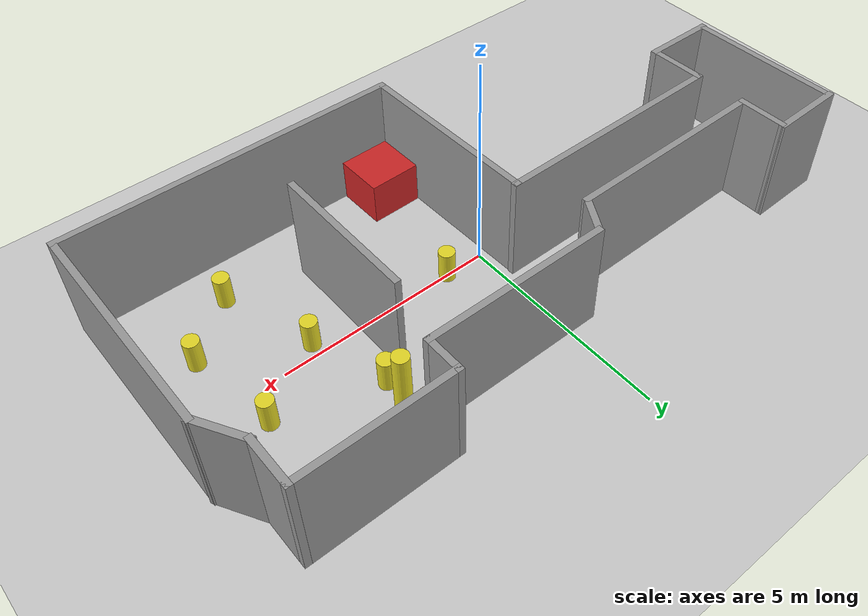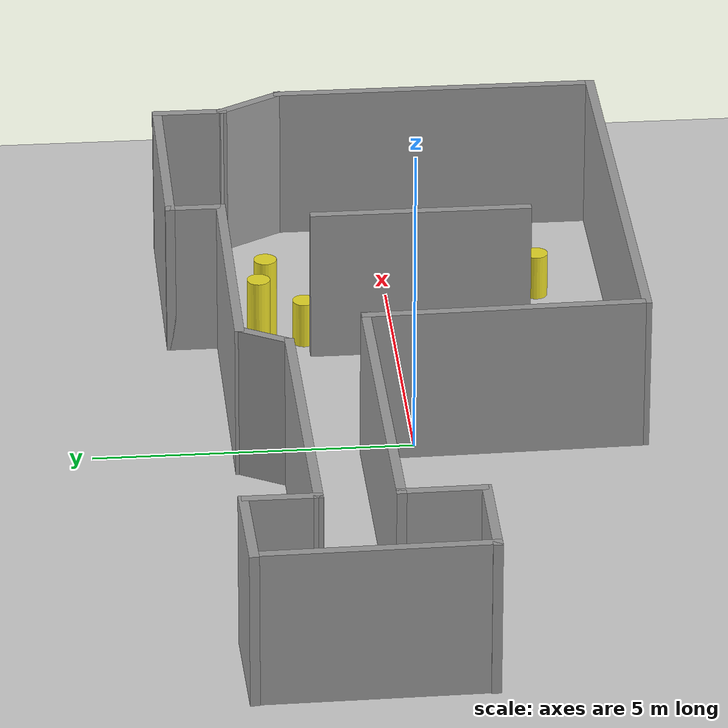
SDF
<sdf version="1.7">
 <world name="default">
  <plugin name="ros_link_attacher_plugin" filename="libgazebo_ros_link_attacher.so"/>
  <light name="sun" type="directional">
   <pose>0 0 10 0 -0 0</pose>
   <diffuse>0.8 0.8 0.8 1</diffuse>
   <specular>0.1 0.1 0.1 1</specular>
   <attenuation>
    <range>1000</range>
    <constant>0.9</constant>
    <linear>0.01</linear>
    <quadratic>0.001</quadratic>
   </attenuation>
   <direction>-0.5 0.5 -1</direction>
  </light>
  <model name="ground_plane">
   <static>1</static>
   <link name="link">
    <collision name="collision">
     <geometry><plane><normal>0 0 1</normal><size>100 100</size></plane></geometry>
     <surface><friction><ode><mu>100</mu><mu2>50</mu2></ode></friction></surface>
    </collision>
    <visual name="visual">
     <cast_shadows>0</cast_shadows>
     <geometry><plane><normal>0 0 1</normal><size>100 100</size></plane></geometry>
     <material>
      <script><uri>file://media/materials/scripts/gazebo.material</uri><name>Gazebo/Grey</name></script>
     </material>
    </visual>
   </link>
  </model>
  <gravity>0 0 -9.8</gravity>
  <magnetic_field>6e-06 2.3e-05 -4.2e-05</magnetic_field>
  <atmosphere type="adiabatic"/>
  <physics name="default_physics" default="0" type="ode">
   <max_step_size>0.001</max_step_size>
   <real_time_factor>1</real_time_factor>
   <real_time_update_rate>1000</real_time_update_rate>
  </physics>
  <scene><ambient>0.4 0.4 0.4 1</ambient><background>0.7 0.7 0.7 1</background><shadows>1</shadows></scene>
  <spherical_coordinates>
   <surface_model>EARTH_WGS84</surface_model>
   <latitude_deg>0</latitude_deg>
   <longitude_deg>0</longitude_deg>
   <elevation>0</elevation>
   <heading_deg>0</heading_deg>
  </spherical_coordinates>
  <audio><device>default</device></audio>
  <model name="room_walls">
   <link name="Wall_1">
    <collision name="Wall_1_Collision">
     <geometry><box><size>1.2 0.15 2.5</size></box></geometry>
     <pose>0 0 1.25 0 -0 0</pose>
    </collision>
    <visual name="Wall_1_Visual">
     <pose>0 0 1.25 0 -0 0</pose>
     <geometry><box><size>1.2 0.15 2.5</size></box></geometry>
     <material>
      <script><uri>file://media/materials/scripts/gazebo.material</uri><name>Gazebo/Grey</name></script>
      <ambient>1 1 1 1</ambient>
     </material>
     <meta><layer>0</layer></meta>
    </visual>
    <pose>-5.79107 2.49368 0 0 -0 1.5708</pose>
   </link>
   <link name="Wall_2">
    <collision name="Wall_2_Collision">
     <geometry><box><size>1.79256 0.15 2.5</size></box></geometry>
     <pose>0 0 1.25 0 -0 0</pose>
    </collision>
    <visual name="Wall_2_Visual">
     <pose>0 0 1.25 0 -0 0</pose>
     <geometry><box><size>1.79256 0.15 2.5</size></box></geometry>
     <material>
      <script><uri>file://media/materials/scripts/gazebo.material</uri><name>Gazebo/Grey</name></script>
      <ambient>1 1 1 1</ambient>
     </material>
     <meta><layer>0</layer></meta>
    </visual>
    <pose>-6.61216 3.04631 0 0 -0 -3.1203</pose>
   </link>
   <link name="Wall_3">
    <collision name="Wall_3_Collision">
     <geometry><box><size>3.68565 0.15 2.5</size></box></geometry>
     <pose>0 0 1.25 0 -0 0</pose>
    </collision>
    <visual name="Wall_3_Visual">
     <pose>0 0 1.25 0 -0 0</pose>
     <geometry><box><size>3.68565 0.15 2.5</size></box></geometry>
     <material>
      <script><uri>file://media/materials/scripts/gazebo.material</uri><name>Gazebo/Grey</name></script>
      <ambient>1 1 1 1</ambient>
     </material>
     <meta><layer>0</layer></meta>
    </visual>
    <pose>-7.38434 1.26123 0 0 -0 -1.5545</pose>
   </link>
   <link name="Wall_4">
    <collision name="Wall_4_Collision">
     <geometry><box><size>1.77744 0.15 2.5</size></box></geometry>
     <pose>0 0 1.25 0 -0 0</pose>
    </collision>
    <visual name="Wall_4_Visual">
     <pose>0 0 1.25 0 -0 0</pose>
     <geometry><box><size>1.77744 0.15 2.5</size></box></geometry>
     <material>
      <script><uri>file://media/materials/scripts/gazebo.material</uri><name>Gazebo/Grey</name></script>
      <ambient>1 1 1 1</ambient>
     </material>
     <meta><layer>0</layer></meta>
    </visual>
    <pose>-6.56193 -0.508986 0 0 -0 -0.003224</pose>
   </link>
   <link name="Wall_5">
    <collision name="Wall_5_Collision">
     <geometry><box><size>1.35672 0.15 2.5</size></box></geometry>
     <pose>0 0 1.25 0 -0 0</pose>
    </collision>
    <visual name="Wall_5_Visual">
     <pose>0 0 1.25 0 -0 0</pose>
     <geometry><box><size>1.35672 0.15 2.5</size></box></geometry>
     <material>
      <script><uri>file://media/materials/scripts/gazebo.material</uri><name>Gazebo/Grey</name></script>
      <ambient>1 1 1 1</ambient>
     </material>
     <meta><layer>0</layer></meta>
    </visual>
    <pose>-5.75827 0.136795 0 0 -0 1.5846</pose>
   </link>
   <link name="Wall_6">
    <collision name="Wall_6_Collision">
     <geometry><box><size>5.64664 0.15 2.5</size></box></geometry>
     <pose>0 0 1.25 0 -0 0</pose>
    </collision>
    <visual name="Wall_6_Visual">
     <pose>0 0 1.25 0 -0 0</pose>
     <geometry><box><size>5.64664 0.15 2.5</size></box></geometry>
     <material>
      <script><uri>file://media/materials/scripts/gazebo.material</uri><name>Gazebo/Grey</name></script>
      <ambient>1 1 1 1</ambient>
     </material>
     <meta><layer>0</layer></meta>
    </visual>
    <pose>-3.02009 0.766397 0 0 -0 0.007796</pose>
   </link>
   <link name="Wall_7">
    <collision name="Wall_7_Collision">
     <geometry><box><size>4.38998 0.15 2.5</size></box></geometry>
     <pose>0 0 1.25 0 -0 0</pose>
    </collision>
    <visual name="Wall_7_Visual">
     <pose>0 0 1.25 0 -0 0</pose>
     <geometry><box><size>4.38998 0.15 2.5</size></box></geometry>
     <material>
      <script><uri>file://media/materials/scripts/gazebo.material</uri><name>Gazebo/Grey</name></script>
      <ambient>1 1 1 1</ambient>
     </material>
     <meta><layer>0</layer></meta>
    </visual>
    <pose>-0.242291 -1.34162 0 0 -0 -1.54891</pose>
   </link>
   <link name="Wall_8">
    <collision name="Wall_8_Collision">
     <geometry><box><size>7.75 0.15 2.5</size></box></geometry>
     <pose>0 0 1.25 0 -0 0</pose>
    </collision>
    <visual name="Wall_8_Visual">
     <pose>0 0 1.25 0 -0 0</pose>
     <geometry><box><size>7.75 0.15 2.5</size></box></geometry>
     <material>
      <script><uri>file://media/materials/scripts/gazebo.material</uri><name>Gazebo/Grey</name></script>
      <ambient>1 1 1 1</ambient>
     </material>
     <meta><layer>0</layer></meta>
    </visual>
    <pose>3.60739 -3.55107 0 0 -0 0</pose>
   </link>
   <link name="Wall_9">
    <collision name="Wall_9_Collision">
     <geometry><box><size>5.25 0.15 2.5</size></box></geometry>
     <pose>0 0 1.25 0 -0 0</pose>
    </collision>
    <visual name="Wall_9_Visual">
     <pose>0 0 1.25 0 -0 0</pose>
     <geometry><box><size>5.25 0.15 2.5</size></box></geometry>
     <material>
      <script><uri>file://media/materials/scripts/gazebo.material</uri><name>Gazebo/Grey</name></script>
      <ambient>1 1 1 1</ambient>
     </material>
     <meta><layer>0</layer></meta>
    </visual>
    <pose>7.40739 -1.00107 0 0 -0 1.5708</pose>
   </link>
   <link name="Wall_10">
    <collision name="Wall_10_Collision">
     <geometry><box><size>1.25 0.15 2.5</size></box></geometry>
     <pose>0 0 1.25 0 -0 0</pose>
    </collision>
    <visual name="Wall_10_Visual">
     <pose>0 0 1.25 0 -0 0</pose>
     <geometry><box><size>1.25 0.15 2.5</size></box></geometry>
     <material>
      <script><uri>file://media/materials/scripts/gazebo.material</uri><name>Gazebo/Grey</name></script>
      <ambient>1 1 1 1</ambient>
     </material>
     <meta><layer>0</layer></meta>
    </visual>
    <pose>7.13239 2.02524 0 0 -0 2.0944</pose>
   </link>
   <link name="Wall_11">
    <collision name="Wall_11_Collision">
     <geometry><box><size>1.20114 0.15 2.5</size></box></geometry>
     <pose>0 0 1.25 0 -0 0</pose>
    </collision>
    <visual name="Wall_11_Visual">
     <pose>0 0 1.25 0 -0 0</pose>
     <geometry><box><size>1.20114 0.15 2.5</size></box></geometry>
     <material>
      <script><uri>file://media/materials/scripts/gazebo.material</uri><name>Gazebo/Grey</name></script>
      <ambient>1 1 1 1</ambient>
     </material>
     <meta><layer>0</layer></meta>
    </visual>
    <pose>6.85739 3.02713 0 0 -0 1.5708</pose>
   </link>
   <link name="Wall_12">
    <collision name="Wall_12_Collision">
     <geometry><box><size>3.5 0.15 2.5</size></box></geometry>
     <pose>0 0 1.25 0 -0 0</pose>
    </collision>
    <visual name="Wall_12_Visual">
     <pose>0 0 1.25 0 -0 0</pose>
     <geometry><box><size>3.5 0.15 2.5</size></box></geometry>
     <material>
      <script><uri>file://media/materials/scripts/gazebo.material</uri><name>Gazebo/Grey</name></script>
      <ambient>1 1 1 1</ambient>
     </material>
     <meta><layer>0</layer></meta>
    </visual>
    <pose>5.18239 3.55269 0 0 -0 3.14159</pose>
   </link>
   <link name="Wall_13">
    <collision name="Wall_13_Collision">
     <geometry><box><size>0.951136 0.15 2.5</size></box></geometry>
     <pose>0 0 1.25 0 -0 0</pose>
    </collision>
    <visual name="Wall_13_Visual">
     <pose>0 0 1.25 0 -0 0</pose>
     <geometry><box><size>0.951136 0.15 2.5</size></box></geometry>
     <material>
      <script><uri>file://media/materials/scripts/gazebo.material</uri><name>Gazebo/Grey</name></script>
      <ambient>1 1 1 1</ambient>
     </material>
     <meta><layer>0</layer></meta>
    </visual>
    <pose>3.50739 3.15213 0 0 -0 -1.5708</pose>
   </link>
   <link name="Wall_14">
    <collision name="Wall_14_Collision">
     <geometry><box><size>4.25 0.15 2.5</size></box></geometry>
     <pose>0 0 1.25 0 -0 0</pose>
    </collision>
    <visual name="Wall_14_Visual">
     <pose>0 0 1.25 0 -0 0</pose>
     <geometry><box><size>4.25 0.15 2.5</size></box></geometry>
     <material>
      <script><uri>file://media/materials/scripts/gazebo.material</uri><name>Gazebo/Grey</name></script>
      <ambient>1 1 1 1</ambient>
     </material>
     <meta><layer>0</layer></meta>
    </visual>
    <pose>1.45739 2.75156 0 0 -0 3.14159</pose>
   </link>
   <link name="Wall_15">
    <collision name="Wall_15_Collision">
     <geometry><box><size>0.9 0.15 2.5</size></box></geometry>
     <pose>0 0 1.25 0 -0 0</pose>
    </collision>
    <visual name="Wall_15_Visual">
     <pose>0 0 1.25 0 -0 0</pose>
     <geometry><box><size>0.9 0.15 2.5</size></box></geometry>
     <material>
      <script><uri>file://media/materials/scripts/gazebo.material</uri><name>Gazebo/Grey</name></script>
      <ambient>1 1 1 1</ambient>
     </material>
     <meta><layer>0</layer></meta>
    </visual>
    <pose>-0.805112 2.3835 0 0 -0 -2.0944</pose>
   </link>
   <link name="Wall_16">
    <collision name="Wall_16_Collision">
     <geometry><box><size>4.92373 0.15 2.5</size></box></geometry>
     <pose>0 0 1.25 0 -0 0</pose>
    </collision>
    <visual name="Wall_16_Visual">
     <pose>0 0 1.25 0 -0 0</pose>
     <geometry><box><size>4.92373 0.15 2.5</size></box></geometry>
     <material>
      <script><uri>file://media/materials/scripts/gazebo.material</uri><name>Gazebo/Grey</name></script>
      <ambient>1 1 1 1</ambient>
     </material>
     <meta><layer>0</layer></meta>
    </visual>
    <pose>-3.40434 1.98962 0 0 -0 -3.13077</pose>
   </link>
   <link name="Wall_17">
    <collision name="Wall_17_Collision">
     <geometry><box><size>3.5 0.15 2.5</size></box></geometry>
     <pose>0 0 1.25 0 -0 0</pose>
    </collision>
    <visual name="Wall_17_Visual">
     <pose>0 0 1.25 0 -0 0</pose>
     <geometry><box><size>3.5 0.15 2.5</size></box></geometry>
     <material>
      <script><uri>file://media/materials/scripts/gazebo.material</uri><name>Gazebo/Grey</name></script>
      <ambient>1 1 1 1</ambient>
     </material>
     <meta><layer>0</layer></meta>
    </visual>
    <pose>3.10875 -0.378342 0 0 -0 -1.5708</pose>
   </link>
   <static>1</static>
  </model>
  <model name="construction_cone_1">
   <pose>2.47486 -0.759354 -0 0 -1e-06 0</pose>
   <link name="link">
    <inertial>
     <mass>1</mass>
     <inertia><ixx>0.145833</ixx><ixy>0</ixy><ixz>0</ixz><iyy>0.145833</iyy><iyz>0</iyz><izz>0.125</izz></inertia>
    </inertial>
    <collision name="collision">
     <geometry><cylinder><radius>0.183096</radius><length>1.4571</length></cylinder></geometry>
    </collision>
    <visual name="visual">
     <geometry><cylinder><radius>0.183096</radius><length>1.4571</length></cylinder></geometry>
     <material>
      <script><name>Gazebo/Yellow</name><uri>file://media/materials/scripts/gazebo.material</uri></script>
     </material>
    </visual>
   </link>
  </model>
  <model name="construction_cone_2">
   <pose>6.16039 -1.34702 -0 -0 -0 -0</pose>
   <link name="link">
    <inertial>
     <mass>1</mass>
     <inertia><ixx>0.145833</ixx><ixy>0</ixy><ixz>0</ixz><iyy>0.145833</iyy><iyz>0</iyz><izz>0.125</izz></inertia>
    </inertial>
    <collision name="collision">
     <geometry><cylinder><radius>0.183096</radius><length>1.4571</length></cylinder></geometry>
    </collision>
    <visual name="visual">
     <geometry><cylinder><radius>0.183096</radius><length>1.4571</length></cylinder></geometry>
     <material>
      <script><name>Gazebo/Yellow</name><uri>file://media/materials/scripts/gazebo.material</uri></script>
     </material>
    </visual>
   </link>
  </model>
  <model name="construction_cone_3">
   <pose>5.81112 0.7632 -8e-06 -6e-06 0 0</pose>
   <link name="link">
    <inertial>
     <mass>1</mass>
     <inertia><ixx>0.145833</ixx><ixy>0</ixy><ixz>0</ixz><iyy>0.145833</iyy><iyz>0</iyz><izz>0.125</izz></inertia>
    </inertial>
    <collision name="collision">
     <geometry><cylinder><radius>0.183096</radius><length>1.4571</length></cylinder></geometry>
    </collision>
    <visual name="visual">
     <geometry><cylinder><radius>0.183096</radius><length>1.4571</length></cylinder></geometry>
     <material>
      <script><name>Gazebo/Yellow</name><uri>file://media/materials/scripts/gazebo.material</uri></script>
     </material>
    </visual>
   </link>
  </model>
  <model name="construction_cone_4">
   <pose>0.89107 -0.016284 -0 0 -0 0</pose>
   <link name="link">
    <inertial>
     <mass>1</mass>
     <inertia><ixx>0.145833</ixx><ixy>0</ixy><ixz>0</ixz><iyy>0.145833</iyy><iyz>0</iyz><izz>0.125</izz></inertia>
    </inertial>
    <collision name="collision">
     <geometry><cylinder><radius>0.183096</radius><length>1.4571</length></cylinder></geometry>
    </collision>
    <visual name="visual">
     <geometry><cylinder><radius>0.183096</radius><length>1.4571</length></cylinder></geometry>
     <material>
      <script><name>Gazebo/Yellow</name><uri>file://media/materials/scripts/gazebo.material</uri></script>
     </material>
    </visual>
   </link>
  </model>
  <model name="construction_cone_5">
   <pose>4.87487 -2.42397 -0 0 -0 0</pose>
   <link name="link">
    <inertial>
     <mass>1</mass>
     <inertia><ixx>0.145833</ixx><ixy>0</ixy><ixz>0</ixz><iyy>0.145833</iyy><iyz>0</iyz><izz>0.125</izz></inertia>
    </inertial>
    <collision name="collision">
     <geometry><cylinder><radius>0.183096</radius><length>1.4571</length></cylinder></geometry>
    </collision>
    <visual name="visual">
     <geometry><cylinder><radius>0.183096</radius><length>1.4571</length></cylinder></geometry>
     <material>
      <script><name>Gazebo/Yellow</name><uri>file://media/materials/scripts/gazebo.material</uri></script>
     </material>
    </visual>
   </link>
  </model>
  <model name="construction_cone_6">
   <pose>4.1555 -0.295494 -0 0 -0 0</pose>
   <link name="link">
    <inertial>
     <mass>1</mass>
     <inertia><ixx>0.145833</ixx><ixy>0</ixy><ixz>0</ixz><iyy>0.145833</iyy><iyz>0</iyz><izz>0.125</izz></inertia>
    </inertial>
    <collision name="collision">
     <geometry><cylinder><radius>0.183096</radius><length>1.4571</length></cylinder></geometry>
    </collision>
    <visual name="visual">
     <geometry><cylinder><radius>0.183096</radius><length>1.4571</length></cylinder></geometry>
     <material>
      <script><name>Gazebo/Yellow</name><uri>file://media/materials/scripts/gazebo.material</uri></script>
     </material>
    </visual>
   </link>
  </model>
  <model name="construction_cone_7">
   <pose>3.57438 1.43433 -6e-06 -4e-06 0 0</pose>
   <link name="link">
    <inertial>
     <mass>1</mass>
     <inertia><ixx>0.145833</ixx><ixy>0</ixy><ixz>0</ixz><iyy>0.145833</iyy><iyz>0</iyz><izz>0.125</izz></inertia>
    </inertial>
    <collision name="collision">
     <geometry><cylinder><radius>0.183096</radius><length>1.4571</length></cylinder></geometry>
    </collision>
    <visual name="visual">
     <geometry><cylinder><radius>0.183096</radius><length>1.4571</length></cylinder></geometry>
     <material>
      <script><name>Gazebo/Yellow</name><uri>file://media/materials/scripts/gazebo.material</uri></script>
     </material>
    </visual>
   </link>
  </model>
  <model name="bookshelf">
   <static>1</static>
   <link name="link">
    <inertial><mass>1</mass></inertial>
    <collision name="back">
     <pose>0 0.005 0.6 0 -0 0</pose>
     <geometry><box><size>0.9 0.01 1.2</size></box></geometry>
    </collision>
    <visual name="visual1">
     <pose>0 0.005 0.6 0 -0 0</pose>
     <geometry><box><size>0.9 0.01 1.2</size></box></geometry>
     <material>
      <script><uri>file://media/materials/scripts/gazebo.material</uri><name>Gazebo/Wood</name></script>
     </material>
    </visual>
    <collision name="left_side">
     <pose>0.45 -0.195 0.6 0 -0 0</pose>
     <geometry><box><size>0.02 0.4 1.2</size></box></geometry>
    </collision>
    <visual name="visual2">
     <pose>0.45 -0.195 0.6 0 -0 0</pose>
     <geometry><box><size>0.02 0.4 1.2</size></box></geometry>
     <material>
      <script><uri>file://media/materials/scripts/gazebo.material</uri><name>Gazebo/Wood</name></script>
     </material>
    </visual>
    <collision name="right_side">
     <pose>-0.45 -0.195 0.6 0 -0 0</pose>
     <geometry><box><size>0.02 0.4 1.2</size></box></geometry>
    </collision>
    <visual name="visual3">
     <pose>-0.45 -0.195 0.6 0 -0 0</pose>
     <geometry><box><size>0.02 0.4 1.2</size></box></geometry>
     <material>
      <script><uri>file://media/materials/scripts/gazebo.material</uri><name>Gazebo/Wood</name></script>
     </material>
    </visual>
    <collision name="bottom">
     <pose>0 -0.195 0.03 0 -0 0</pose>
     <geometry><box><size>0.88 0.4 0.06</size></box></geometry>
    </collision>
    <visual name="visual4">
     <pose>0 -0.195 0.03 0 -0 0</pose>
     <geometry><box><size>0.88 0.4 0.06</size></box></geometry>
     <material>
      <script><uri>file://media/materials/scripts/gazebo.material</uri><name>Gazebo/Wood</name></script>
     </material>
    </visual>
    <collision name="top">
     <pose>0 -0.195 1.19 0 -0 0</pose>
     <geometry><box><size>0.88 0.4 0.02</size></box></geometry>
    </collision>
    <visual name="visual5">
     <pose>0 -0.195 1.19 0 -0 0</pose>
     <geometry><box><size>0.88 0.4 0.02</size></box></geometry>
     <material>
      <script><uri>file://media/materials/scripts/gazebo.material</uri><name>Gazebo/Wood</name></script>
     </material>
    </visual>
    <collision name="low_shelf">
     <pose>0 -0.195 0.43 0 -0 0</pose>
     <geometry><box><size>0.88 0.4 0.02</size></box></geometry>
    </collision>
    <visual name="visual6">
     <pose>0 -0.195 0.43 0 -0 0</pose>
     <geometry><box><size>0.88 0.4 0.02</size></box></geometry>
     <material>
      <script><uri>file://media/materials/scripts/gazebo.material</uri><name>Gazebo/Wood</name></script>
     </material>
    </visual>
    <collision name="high_shelf">
     <pose>0 -0.195 0.8 0 -0 0</pose>
     <geometry><box><size>0.88 0.4 0.02</size></box></geometry>
    </collision>
    <visual name="visual7">
     <pose>0 -0.195 0.8 0 -0 0</pose>
     <geometry><box><size>0.88 0.4 0.02</size></box></geometry>
     <material>
      <script><uri>file://media/materials/scripts/gazebo.material</uri><name>Gazebo/Wood</name></script>
     </material>
    </visual>
   </link>
   <pose>4.0629 3.08519 0 0 -0 0</pose>
  </model>
  <model name="unit_box">
   <pose>0.472867 -2.89704 0.5 0 -0 0.015896</pose>
   <link name="link">
    <inertial>
     <mass>1</mass>
     <inertia>
      <ixx>0.166667</ixx>
      <ixy>0</ixy>
      <ixz>0</ixz>
      <iyy>0.166667</iyy>
      <iyz>0</iyz>
      <izz>0.166667</izz>
     </inertia>
    </inertial>
    <collision name="collision"><geometry><box><size>1.19135 1.13741 1</size></box></geometry></collision>
    <visual name="visual">
     <geometry><box><size>1.19135 1.13741 1</size></box></geometry>
     <material>
      <script><name>Gazebo/Red</name><uri>file://media/materials/scripts/gazebo.material</uri></script>
     </material>
    </visual>
   </link>
  </model>
  <model name="unit_cylinder_1">
   <pose>2.95999 2.19963 0.728546 0 -0 0</pose>
   <link name="link">
    <inertial>
     <mass>1</mass>
     <inertia><ixx>0.145833</ixx><ixy>0</ixy><ixz>0</ixz><iyy>0.145833</iyy><iyz>0</iyz><izz>0.125</izz></inertia>
    </inertial>
    <collision name="collision">
     <geometry><cylinder><radius>0.183096</radius><length>1.4571</length></cylinder></geometry>
    </collision>
    <visual name="visual">
     <geometry><cylinder><radius>0.183096</radius><length>1.4571</length></cylinder></geometry>
     <material>
      <script><name>Gazebo/Yellow</name><uri>file://media/materials/scripts/gazebo.material</uri></script>
     </material>
    </visual>
   </link>
  </model>
  <model name="unit_cylinder_2">
   <pose>3.63721 2.04518 0.728542 0 -0 -2e-05</pose>
   <link name="link">
    <inertial>
     <mass>1</mass>
     <inertia><ixx>0.145833</ixx><ixy>0</ixy><ixz>0</ixz><iyy>0.145833</iyy><iyz>0</iyz><izz>0.125</izz></inertia>
    </inertial>
    <collision name="collision">
     <geometry><cylinder><radius>0.183096</radius><length>1.4571</length></cylinder></geometry>
    </collision>
    <visual name="visual">
     <geometry><cylinder><radius>0.183096</radius><length>1.4571</length></cylinder></geometry>
     <material>
      <script><name>Gazebo/Yellow</name><uri>file://media/materials/scripts/gazebo.material</uri></script>
     </material>
    </visual>
   </link>
  </model>
 </world>
</sdf>
